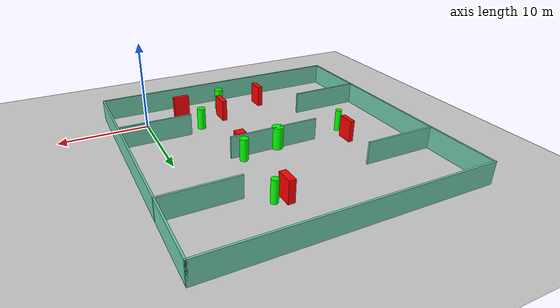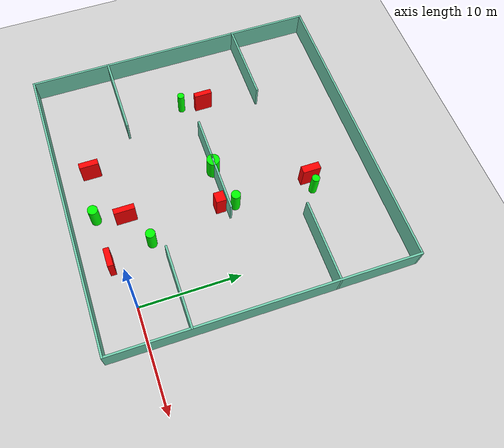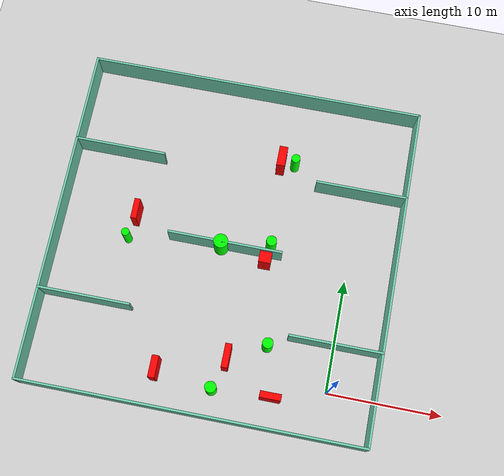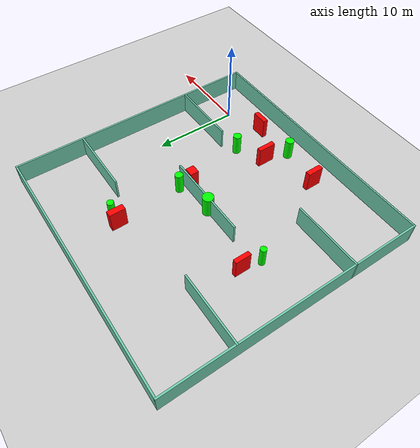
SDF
<sdf version="1.7">
 <world name="default">
  <light name="sun" type="directional">
   <pose>0 0 10 0 -0 0</pose>
   <diffuse>0.8 0.8 0.8 1</diffuse>
   <specular>0.2 0.2 0.2 1</specular>
   <attenuation>
    <range>1000</range>
    <constant>0.9</constant>
    <linear>0.01</linear>
    <quadratic>0.001</quadratic>
   </attenuation>
   <direction>-0.5 0.1 -0.9</direction>
   <spot><inner_angle>0</inner_angle><outer_angle>0</outer_angle><falloff>0</falloff></spot>
  </light>
  <model name="ground_plane">
   <static>1</static>
   <link name="link">
    <collision name="collision">
     <geometry><plane><normal>0 0 1</normal><size>100 100</size></plane></geometry>
     <surface>
      <contact><collide_bitmask>65535</collide_bitmask></contact>
      <friction><ode><mu>100</mu><mu2>50</mu2></ode></friction>
     </surface>
    </collision>
    <visual name="visual">
     <cast_shadows>0</cast_shadows>
     <geometry><plane><normal>0 0 1</normal><size>100 100</size></plane></geometry>
     <material>
      <script><uri>file://media/materials/scripts/gazebo.material</uri><name>Gazebo/Grey</name></script>
     </material>
    </visual>
   </link>
  </model>
  <gravity>0 0 -9.8</gravity>
  <magnetic_field>6e-06 2.3e-05 -4.2e-05</magnetic_field>
  <atmosphere type="adiabatic"/>
  <physics type="ode">
   <max_step_size>0.001</max_step_size>
   <real_time_factor>1</real_time_factor>
   <real_time_update_rate>1000</real_time_update_rate>
  </physics>
  <scene><ambient>0.4 0.4 0.4 1</ambient><background>0.7 0.7 0.7 1</background><shadows>1</shadows></scene>
  <spherical_coordinates>
   <surface_model>EARTH_WGS84</surface_model>
   <latitude_deg>0</latitude_deg>
   <longitude_deg>0</longitude_deg>
   <elevation>0</elevation>
   <heading_deg>0</heading_deg>
  </spherical_coordinates>
  <model name="my_base_walls">
   <link name="Wall_10">
    <collision name="Wall_10_Collision">
     <geometry><box><size>8.2 0.2 2.5</size></box></geometry>
     <pose>0 0 1.25 0 -0 0</pose>
    </collision>
    <visual name="Wall_10_Visual">
     <pose>0 0 1.25 0 -0 0</pose>
     <geometry><box><size>8.2 0.2 2.5</size></box></geometry>
     <material>
      <script><uri>file://media/materials/scripts/gazebo.material</uri><name>Gazebo/Grey</name></script>
      <ambient>0.435294 0.796078 0.67451 1</ambient>
     </material>
     <meta><layer>0</layer></meta>
    </visual>
    <pose>-11 -7 0 0 -0 0</pose>
   </link>
   <link name="Wall_12">
    <collision name="Wall_12_Collision">
     <geometry><box><size>8.2 0.2 2.5</size></box></geometry>
     <pose>0 0 1.25 0 -0 0</pose>
    </collision>
    <visual name="Wall_12_Visual">
     <pose>0 0 1.25 0 -0 0</pose>
     <geometry><box><size>8.2 0.2 2.5</size></box></geometry>
     <material>
      <script><uri>file://media/materials/scripts/gazebo.material</uri><name>Gazebo/Grey</name></script>
      <ambient>0.435294 0.796078 0.67451 1</ambient>
     </material>
     <meta><layer>0</layer></meta>
    </visual>
    <pose>-11 7 0 0 -0 0</pose>
   </link>
   <link name="Wall_14">
    <collision name="Wall_14_Collision">
     <geometry><box><size>8.2 0.2 2.5</size></box></geometry>
     <pose>0 0 1.25 0 -0 0</pose>
    </collision>
    <visual name="Wall_14_Visual">
     <pose>0 0 1.25 0 -0 0</pose>
     <geometry><box><size>8.2 0.2 2.5</size></box></geometry>
     <material>
      <script><uri>file://media/materials/scripts/gazebo.material</uri><name>Gazebo/Grey</name></script>
      <ambient>0.435294 0.796078 0.67451 1</ambient>
     </material>
     <meta><layer>0</layer></meta>
    </visual>
    <pose>11 7 0 0 -0 3.14159</pose>
   </link>
   <link name="Wall_16">
    <collision name="Wall_16_Collision">
     <geometry><box><size>10.2 0.2 2.5</size></box></geometry>
     <pose>0 0 1.25 0 -0 0</pose>
    </collision>
    <visual name="Wall_16_Visual">
     <pose>0 0 1.25 0 -0 0</pose>
     <geometry><box><size>10.2 0.2 2.5</size></box></geometry>
     <material>
      <script><uri>file://media/materials/scripts/gazebo.material</uri><name>Gazebo/Grey</name></script>
      <ambient>0.435294 0.796078 0.67451 1</ambient>
     </material>
     <meta><layer>0</layer></meta>
    </visual>
    <pose>0 0 0 0 -0 3.14159</pose>
   </link>
   <link name="Wall_2">
    <collision name="Wall_2_Collision">
     <geometry><box><size>30.2 0.2 2.5</size></box></geometry>
     <pose>0 0 1.25 0 -0 0</pose>
    </collision>
    <visual name="Wall_2_Visual">
     <pose>0 0 1.25 0 -0 0</pose>
     <geometry><box><size>30.2 0.2 2.5</size></box></geometry>
     <material>
      <script><uri>file://media/materials/scripts/gazebo.material</uri><name>Gazebo/Grey</name></script>
      <ambient>0.435294 0.796078 0.67451 1</ambient>
     </material>
     <meta><layer>0</layer></meta>
    </visual>
    <pose>0 -15 0 0 -0 3.14159</pose>
   </link>
   <link name="Wall_3">
    <collision name="Wall_3_Collision">
     <geometry><box><size>30.2 0.2 2.5</size></box></geometry>
     <pose>0 0 1.25 0 -0 0</pose>
    </collision>
    <visual name="Wall_3_Visual">
     <pose>0 0 1.25 0 -0 0</pose>
     <geometry><box><size>30.2 0.2 2.5</size></box></geometry>
     <material>
      <script><uri>file://media/materials/scripts/gazebo.material</uri><name>Gazebo/Grey</name></script>
      <ambient>0.435294 0.796078 0.67451 1</ambient>
     </material>
     <meta><layer>0</layer></meta>
    </visual>
    <pose>-15 0 0 0 -0 1.5708</pose>
   </link>
   <link name="Wall_4">
    <collision name="Wall_4_Collision">
     <geometry><box><size>30.2 0.2 2.5</size></box></geometry>
     <pose>0 0 1.25 0 -0 0</pose>
    </collision>
    <visual name="Wall_4_Visual">
     <pose>0 0 1.25 0 -0 0</pose>
     <geometry><box><size>30.2 0.2 2.5</size></box></geometry>
     <material>
      <script><uri>file://media/materials/scripts/gazebo.material</uri><name>Gazebo/Grey</name></script>
      <ambient>0.435294 0.796078 0.67451 1</ambient>
     </material>
     <meta><layer>0</layer></meta>
    </visual>
    <pose>0 15 0 0 -0 0</pose>
   </link>
   <link name="Wall_6">
    <collision name="Wall_6_Collision">
     <geometry><box><size>30.2 0.2 2.5</size></box></geometry>
     <pose>0 0 1.25 0 -0 0</pose>
    </collision>
    <visual name="Wall_6_Visual">
     <pose>0 0 1.25 0 -0 0</pose>
     <geometry><box><size>30.2 0.2 2.5</size></box></geometry>
     <material>
      <script><uri>file://media/materials/scripts/gazebo.material</uri><name>Gazebo/Grey</name></script>
      <ambient>0.435294 0.796078 0.67451 1</ambient>
     </material>
     <meta><layer>0</layer></meta>
    </visual>
    <pose>15 0 0 0 -0 1.5708</pose>
   </link>
   <link name="Wall_8">
    <collision name="Wall_8_Collision">
     <geometry><box><size>8.2 0.2 2.5</size></box></geometry>
     <pose>0 0 1.25 0 -0 0</pose>
    </collision>
    <visual name="Wall_8_Visual">
     <pose>0 0 1.25 0 -0 0</pose>
     <geometry><box><size>8.2 0.2 2.5</size></box></geometry>
     <material>
      <script><uri>file://media/materials/scripts/gazebo.material</uri><name>Gazebo/Grey</name></script>
      <ambient>0.435294 0.796078 0.67451 1</ambient>
     </material>
     <meta><layer>0</layer></meta>
    </visual>
    <pose>11 -7 0 0 -0 3.14159</pose>
   </link>
   <static>1</static>
   <pose>-11 11 0 0 -0 0</pose>
  </model>
  <model name="cylinder1">
   <static>1</static>
   <link name="link">
    <inertial>
     <mass>1</mass>
     <inertia><ixx>0.5</ixx><ixy>0</ixy><ixz>0</ixz><iyy>0.5</iyy><iyz>0</iyz><izz>1</izz></inertia>
    </inertial>
    <collision name="collision">
     <geometry><cylinder><radius>0.45880645099248407</radius><length>2.5</length></cylinder></geometry>
    </collision>
    <visual name="visual">
     <geometry><cylinder><radius>0.45880645099248407</radius><length>2.5</length></cylinder></geometry>
     <material>
      <ambient>0 1 0 1</ambient>
      <diffuse>0 1 0 1</diffuse>
      <specular>0.1 0.1 0.1 1</specular>
      <emissive>0 0 0 0</emissive>
     </material>
    </visual>
   </link>
   <pose>-7.019279365390911 11.851098335932079 1.25 0 0 0</pose>
  </model>
  <model name="cylinder2">
   <static>1</static>
   <link name="link">
    <inertial>
     <mass>1</mass>
     <inertia><ixx>0.5</ixx><ixy>0</ixy><ixz>0</ixz><iyy>0.5</iyy><iyz>0</iyz><izz>1</izz></inertia>
    </inertial>
    <collision name="collision">
     <geometry><cylinder><radius>0.4957244463139339</radius><length>2.5</length></cylinder></geometry>
    </collision>
    <visual name="visual">
     <geometry><cylinder><radius>0.4957244463139339</radius><length>2.5</length></cylinder></geometry>
     <material>
      <ambient>0 1 0 1</ambient>
      <diffuse>0 1 0 1</diffuse>
      <specular>0.1 0.1 0.1 1</specular>
      <emissive>0 0 0 0</emissive>
     </material>
    </visual>
   </link>
   <pose>-9.723196498175398 -1.5512041671367172 1.25 0 0 0</pose>
  </model>
  <model name="cylinder3">
   <static>1</static>
   <link name="link">
    <inertial>
     <mass>1</mass>
     <inertia><ixx>0.5</ixx><ixy>0</ixy><ixz>0</ixz><iyy>0.5</iyy><iyz>0</iyz><izz>1</izz></inertia>
    </inertial>
    <collision name="collision">
     <geometry><cylinder><radius>0.3502891461891866</radius><length>2.5</length></cylinder></geometry>
    </collision>
    <visual name="visual">
     <geometry><cylinder><radius>0.3502891461891866</radius><length>2.5</length></cylinder></geometry>
     <material>
      <ambient>0 1 0 1</ambient>
      <diffuse>0 1 0 1</diffuse>
      <specular>0.1 0.1 0.1 1</specular>
      <emissive>0 0 0 0</emissive>
     </material>
    </visual>
   </link>
   <pose>-19.730971956338834 10.208514350430889 1.25 0 0 0</pose>
  </model>
  <model name="cylinder4">
   <static>1</static>
   <link name="link">
    <inertial>
     <mass>1</mass>
     <inertia><ixx>0.5</ixx><ixy>0</ixy><ixz>0</ixz><iyy>0.5</iyy><iyz>0</iyz><izz>1</izz></inertia>
    </inertial>
    <collision name="collision">
     <geometry><cylinder><radius>0.6419742355164912</radius><length>2.5</length></cylinder></geometry>
    </collision>
    <visual name="visual">
     <geometry><cylinder><radius>0.6419742355164912</radius><length>2.5</length></cylinder></geometry>
     <material>
      <ambient>0 1 0 1</ambient>
      <diffuse>0 1 0 1</diffuse>
      <specular>0.1 0.1 0.1 1</specular>
      <emissive>0 0 0 0</emissive>
     </material>
    </visual>
   </link>
   <pose>-11.373914541890603 10.988826401604575 1.25 0 0 0</pose>
  </model>
  <model name="cylinder5">
   <static>1</static>
   <link name="link">
    <inertial>
     <mass>1</mass>
     <inertia><ixx>0.5</ixx><ixy>0</ixy><ixz>0</ixz><iyy>0.5</iyy><iyz>0</iyz><izz>1</izz></inertia>
    </inertial>
    <collision name="collision">
     <geometry><cylinder><radius>0.4706002458334709</radius><length>2.5</length></cylinder></geometry>
    </collision>
    <visual name="visual">
     <geometry><cylinder><radius>0.4706002458334709</radius><length>2.5</length></cylinder></geometry>
     <material>
      <ambient>0 1 0 1</ambient>
      <diffuse>0 1 0 1</diffuse>
      <specular>0.1 0.1 0.1 1</specular>
      <emissive>0 0 0 0</emissive>
     </material>
    </visual>
   </link>
   <pose>-5.698575904028795 2.9809829784343638 1.25 0 0 0</pose>
  </model>
  <model name="cylinder6">
   <static>1</static>
   <link name="link">
    <inertial>
     <mass>1</mass>
     <inertia><ixx>0.5</ixx><ixy>0</ixy><ixz>0</ixz><iyy>0.5</iyy><iyz>0</iyz><izz>1</izz></inertia>
    </inertial>
    <collision name="collision">
     <geometry><cylinder><radius>0.3909789465240282</radius><length>2.5</length></cylinder></geometry>
    </collision>
    <visual name="visual">
     <geometry><cylinder><radius>0.3909789465240282</radius><length>2.5</length></cylinder></geometry>
     <material>
      <ambient>0 1 0 1</ambient>
      <diffuse>0 1 0 1</diffuse>
      <specular>0.1 0.1 0.1 1</specular>
      <emissive>0 0 0 0</emissive>
     </material>
    </visual>
   </link>
   <pose>-6.276348241142701 19.79511972267575 1.25 0 0 0</pose>
  </model>
  <model name="box1">
   <static>1</static>
   <link name="link">
    <inertial>
     <mass>1</mass>
     <inertia><ixx>0.083</ixx><ixy>0</ixy><ixz>0</ixz><iyy>0.083</iyy><iyz>0</iyz><izz>0.083</izz></inertia>
    </inertial>
    <collision name="collision">
     <geometry><box><size>1.0701034219857481 0.9979254822908015 2.5</size></box></geometry>
    </collision>
    <visual name="visual">
     <geometry><box><size>1.0701034219857481 0.9979254822908015 2.5</size></box></geometry>
     <material>
      <ambient>1 0 0 1</ambient>
      <diffuse>1 0 0 1</diffuse>
      <specular>0.1 0.1 0.1 1</specular>
      <emissive>0 0 0 0</emissive>
     </material>
    </visual>
    <sensor name="my_contact" type="contact">
     <contact><collision>box_collision</collision><topic>__default_topic__</topic></contact>
    </sensor>
   </link>
   <pose>-7.2886673739842145 10.304947006312968 1.25 0 0 0</pose>
  </model>
  <model name="box2">
   <static>1</static>
   <link name="link">
    <inertial>
     <mass>1</mass>
     <inertia><ixx>0.083</ixx><ixy>0</ixy><ixz>0</ixz><iyy>0.083</iyy><iyz>0</iyz><izz>0.083</izz></inertia>
    </inertial>
    <collision name="collision">
     <geometry><box><size>1.8381202490176416 0.5636549293604979 2.5</size></box></geometry>
    </collision>
    <visual name="visual">
     <geometry><box><size>1.8381202490176416 0.5636549293604979 2.5</size></box></geometry>
     <material>
      <ambient>1 0 0 1</ambient>
      <diffuse>1 0 0 1</diffuse>
      <specular>0.1 0.1 0.1 1</specular>
      <emissive>0 0 0 0</emissive>
     </material>
    </visual>
    <sensor name="my_contact" type="contact">
     <contact><collision>box_collision</collision><topic>__default_topic__</topic></contact>
    </sensor>
   </link>
   <pose>-4.667660535913601 -1.299938098702742 1.25 0 0 0</pose>
  </model>
  <model name="box3">
   <static>1</static>
   <link name="link">
    <inertial>
     <mass>1</mass>
     <inertia><ixx>0.083</ixx><ixy>0</ixy><ixz>0</ixz><iyy>0.083</iyy><iyz>0</iyz><izz>0.083</izz></inertia>
    </inertial>
    <collision name="collision">
     <geometry><box><size>0.5997125624918516 1.8989014856143798 2.5</size></box></geometry>
    </collision>
    <visual name="visual">
     <geometry><box><size>0.5997125624918516 1.8989014856143798 2.5</size></box></geometry>
     <material>
      <ambient>1 0 0 1</ambient>
      <diffuse>1 0 0 1</diffuse>
      <specular>0.1 0.1 0.1 1</specular>
      <emissive>0 0 0 0</emissive>
     </material>
    </visual>
    <sensor name="my_contact" type="contact">
     <contact><collision>box_collision</collision><topic>__default_topic__</topic></contact>
    </sensor>
   </link>
   <pose>-14.762141952096774 -0.7836095722758314 1.25 0 0 0</pose>
  </model>
  <model name="box4">
   <static>1</static>
   <link name="link">
    <inertial>
     <mass>1</mass>
     <inertia><ixx>0.083</ixx><ixy>0</ixy><ixz>0</ixz><iyy>0.083</iyy><iyz>0</iyz><izz>0.083</izz></inertia>
    </inertial>
    <collision name="collision">
     <geometry><box><size>0.5578314864659125 2.0743915074247514 2.5</size></box></geometry>
    </collision>
    <visual name="visual">
     <geometry><box><size>0.5578314864659125 2.0743915074247514 2.5</size></box></geometry>
     <material>
      <ambient>1 0 0 1</ambient>
      <diffuse>1 0 0 1</diffuse>
      <specular>0.1 0.1 0.1 1</specular>
      <emissive>0 0 0 0</emissive>
     </material>
    </visual>
    <sensor name="my_contact" type="contact">
     <contact><collision>box_collision</collision><topic>__default_topic__</topic></contact>
    </sensor>
   </link>
   <pose>-8.918265688155138 1.2835477672261124 1.25 0 0 0</pose>
  </model>
  <model name="box5">
   <static>1</static>
   <link name="link">
    <inertial>
     <mass>1</mass>
     <inertia><ixx>0.083</ixx><ixy>0</ixy><ixz>0</ixz><iyy>0.083</iyy><iyz>0</iyz><izz>0.083</izz></inertia>
    </inertial>
    <collision name="collision">
     <geometry><box><size>0.5122759409267207 1.8080395833041818 2.5</size></box></geometry>
    </collision>
    <visual name="visual">
     <geometry><box><size>0.5122759409267207 1.8080395833041818 2.5</size></box></geometry>
     <material>
      <ambient>1 0 0 1</ambient>
      <diffuse>1 0 0 1</diffuse>
      <specular>0.1 0.1 0.1 1</specular>
      <emissive>0 0 0 0</emissive>
     </material>
    </visual>
    <sensor name="my_contact" type="contact">
     <contact><collision>box_collision</collision><topic>__default_topic__</topic></contact>
    </sensor>
   </link>
   <pose>-19.331672035611227 12.46987523389064 1.25 0 0 0</pose>
  </model>
  <model name="box6">
   <static>1</static>
   <link name="link">
    <inertial>
     <mass>1</mass>
     <inertia><ixx>0.083</ixx><ixy>0</ixy><ixz>0</ixz><iyy>0.083</iyy><iyz>0</iyz><izz>0.083</izz></inertia>
    </inertial>
    <collision name="collision">
     <geometry><box><size>0.7483006653689163 1.832563367416673 2.5</size></box></geometry>
    </collision>
    <visual name="visual">
     <geometry><box><size>0.7483006653689163 1.832563367416673 2.5</size></box></geometry>
     <material>
      <ambient>1 0 0 1</ambient>
      <diffuse>1 0 0 1</diffuse>
      <specular>0.1 0.1 0.1 1</specular>
      <emissive>0 0 0 0</emissive>
     </material>
    </visual>
    <sensor name="my_contact" type="contact">
     <contact><collision>box_collision</collision><topic>__default_topic__</topic></contact>
    </sensor>
   </link>
   <pose>-7.523563310728196 19.7902017719481 1.25 0 0 0</pose>
  </model>
 </world>
</sdf>
